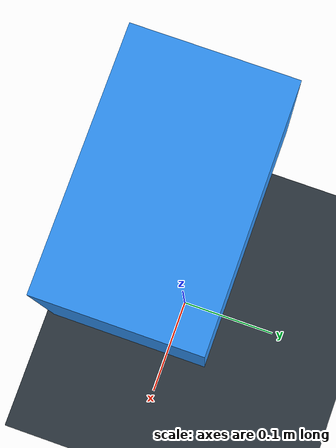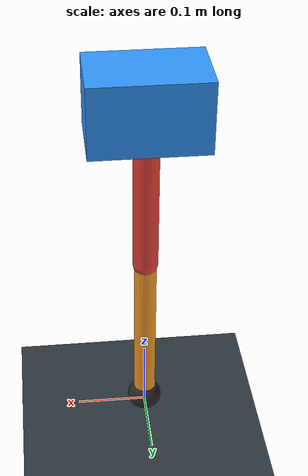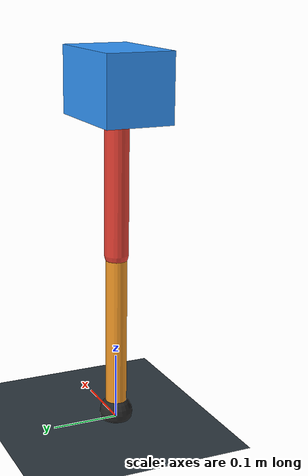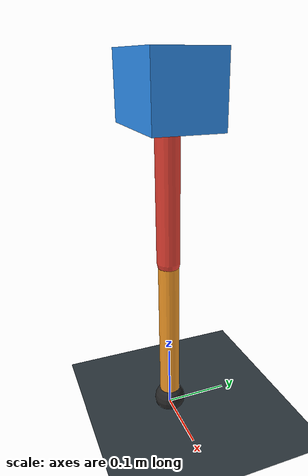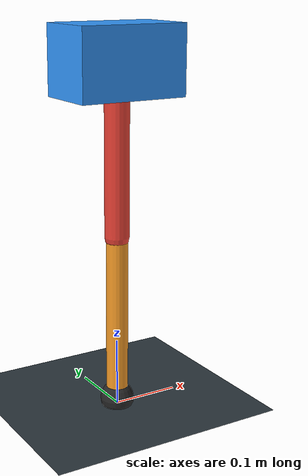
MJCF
<mujoco model="single_axis_two_bar">
  <compiler angle="radian" inertiafromgeom="true"/>
  <option timestep="0.001" integrator="implicitfast" gravity="0 0 -9.81"/>
  <default>
    <joint damping="0.08"/>
    <geom friction="1.2 0.01 0.0001" condim="3"/>
  </default>
  <worldbody>
    <geom name="floor" type="plane" size="5 5 0.1" rgba="0.18 0.22 0.25 1"/>
    <body name="carriage" pos="0 0 0.51">
      <joint name="pole_slide" type="slide" axis="0 0 1"/>
      <geom name="payload" type="box" size="0.08 0.05 0.05" mass="2.2800000000000002" rgba="0.2 0.6 1 1"/>
      <body name="thigh" pos="0 0 0">
        <joint name="hip" type="hinge" axis="0 1 0"/>
        <geom name="thigh_link" type="capsule" fromto="0 0 0 0 0 -0.25" size="0.018" mass="0.17812830345854125" rgba="0.9 0.25 0.2 1"/>
        <body name="shank" pos="0 0 -0.25">
          <joint name="knee" type="hinge" axis="0 1 0"/>
          <geom name="shank_link" type="capsule" fromto="0 0 0 0 0 -0.25" size="0.016" mass="0.17812830345854125" rgba="0.95 0.6 0.15 1"/>
          <geom name="foot" type="sphere" pos="0 0 -0.25" size="0.025" mass="0.03" rgba="0.15 0.15 0.15 1"/>
          <site name="toe" pos="0 0 -0.25" size="0.008"/>
        </body>
      </body>
    </body>
  </worldbody>
  <actuator>
    <motor name="hip_motor" joint="hip" ctrlrange="-21.611968032334648 21.611968032334648"/>
    <motor name="knee_motor" joint="knee" ctrlrange="-21.611968032334648 21.611968032334648"/>
  </actuator>
</mujoco>
